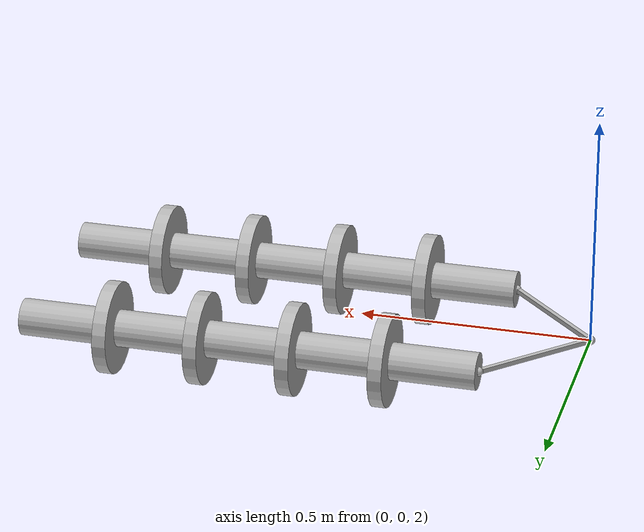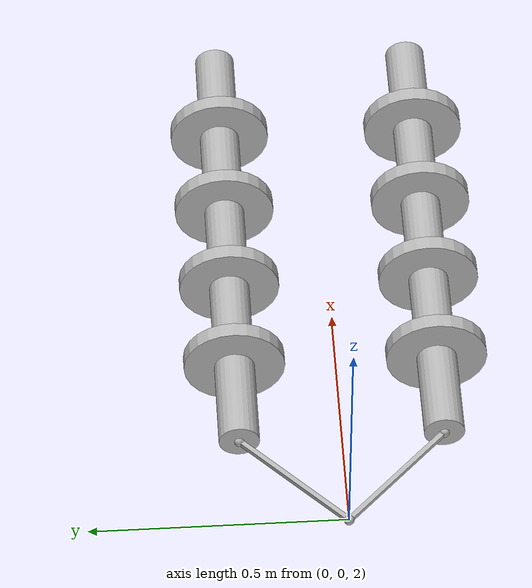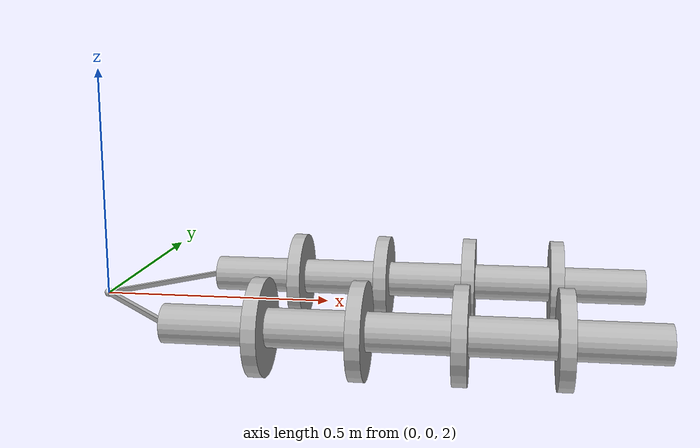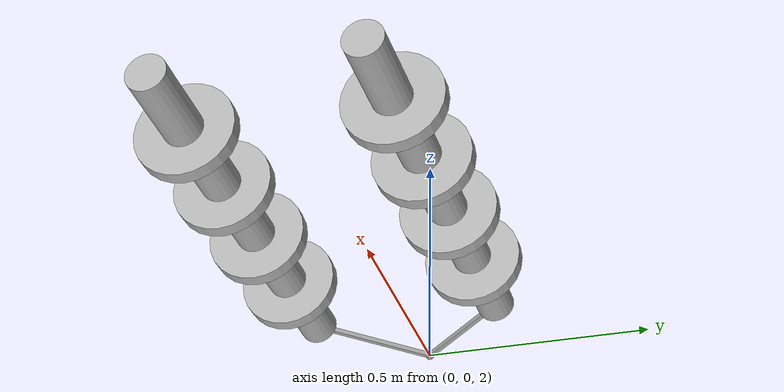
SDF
<?xml version='1.0'?>

<sdf version="1.4">
	<model name="apoyo">
		<static>false</static>
		<self_collide>false</self_collide>
		<pose>0 0 2 0 0 0</pose>
		<link name="bola_central">
			<visual name="visual">
				<geometry>
        			<sphere>
          				<radius>0.01</radius>
        			</sphere>
      			</geometry>
			</visual>

			<collision name="collision">
				<geometry>
        			<sphere>
          				<radius>0.01</radius>
        			</sphere>
      			</geometry>
			</collision>
		</link>

		<link name="palo_0">
			<pose>0.10 0.10 0 0 0 0.7853981633974483</pose>
			<visual name="visual">
				<geometry>
					<box>
						<size>0.2828 0.01 0.01</size>
					</box>
				</geometry>
			</visual>

 			<collision name="collision">
				<geometry>
					<box>
						<size>0.2828 0.01 0.01</size>
					</box>
				</geometry>
			</collision>
		</link>

		<joint name="bola_central_palo_0" type="fixed">
			<parent>bola_central</parent>
			<child>palo_0</child>
		</joint>

		<link name="bola_borde_0">
			<pose>0.2  0.2 0 0 0 0</pose>
			<visual name="visual">
				<geometry>
        			<sphere>
          				<radius>0.01</radius>
        			</sphere>
      			</geometry>
			</visual>

			<collision name="collision">
				<geometry>
        			<sphere>
          				<radius>0.01</radius>
        			</sphere>
      			</geometry>
			</collision>
		</link>

		<joint name="bola_borde_0_palo_0" type="fixed">
			<parent>bola_borde_0</parent>
			<child>palo_0</child>
		</joint> -->

		<include>
			<uri>model://Aislador</uri>
			<name>Aislador_0</name>
			<pose>0.2  0.2 0 0 -1.5707963267948966 0</pose>
		</include>

		<joint name="joint_aislador_0" type="fixed">
			<child>Aislador_0::aislador</child>
			<parent>bola_borde_0</parent>
		</joint>

		<link name="palo_1">
			<pose>0.10 -0.10 0 0 0 -0.7853981633974483</pose>
			<visual name="visual">
				<geometry>
					<box>
						<size>0.2828 0.01 0.01</size>
					</box>
				</geometry>
			</visual>

 			<collision name="collision">
				<geometry>
					<box>
						<size>0.2828 0.01 0.01</size>
					</box>
				</geometry>
			</collision>
		</link>

		<joint name="bola_central_palo_1" type="fixed">
			<parent>bola_central</parent>
			<child>palo_1</child>
		</joint>

		<link name="bola_borde_1">
			<pose>0.2 -0.2 0 0 0 0</pose>
			<visual name="visual">
				<geometry>
        			<sphere>
          				<radius>0.01</radius>
        			</sphere>
      			</geometry>
			</visual>

			<collision name="collision">
				<geometry>
        			<sphere>
          				<radius>0.01</radius>
        			</sphere>
      			</geometry>
			</collision>
		</link>

		<joint name="bola_borde_1_palo_1" type="fixed">
			<parent>bola_borde_1</parent>
			<child>palo_1</child>
		</joint> -->

		<include>
			<uri>model://Aislador</uri>
			<name>Aislador_1</name>
			<pose>0.2 -0.2 0 0 -1.5707963267948966 0</pose>
		</include>

		<joint name="joint_aislador_1" type="fixed">
			<child>Aislador_1::aislador</child>
			<parent>bola_borde_1</parent>
		</joint>

	</model>
</sdf>

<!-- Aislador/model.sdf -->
<sdf version='1.6'>
	<model name='Aislador'>
		<self_collide>false</self_collide>
		<link name='aislador'>
			<visual name = "visual_palo">
				<pose>0 0 -0.5 0 0 0</pose>
				<geometry>
					<cylinder>
						<radius>0.04</radius>
						<length>1</length>
					</cylinder>
				</geometry>
			</visual>
			<collision name = "collision_palo">
				<pose>0 0 -0.5 0 0 0</pose>
				<geometry>
					<cylinder>
						<radius>0.04</radius>
						<length>1</length>
					</cylinder>
				</geometry>
			</collision>

			<visual name='visual_cilindro_1'>
				<pose>0 0 -0.2 0 0 0</pose>
		        <geometry>
			        <cylinder>
			            <radius>0.1</radius>
			            <length>0.03</length>
			        </cylinder>
		        </geometry>
      		</visual>
      		<collision name='visual_cilindro_1'>
      			<pose>0 0 -0.2 0 0 0</pose>
        		<geometry>
          			<cylinder>
			            <radius>0.1</radius>
			            <length>0.03</length>
          			</cylinder>
        		</geometry>
      		</collision>

			<visual name='visual_cilindro_2'>
				<pose>0 0 -0.4 0 0 0</pose>
		        <geometry>
			        <cylinder>
			            <radius>0.1</radius>
			            <length>0.03</length>
			        </cylinder>
		        </geometry>
      		</visual>
      		<collision name='visual_cilindro_2'>
      			<pose>0 0 -0.4 0 0 0</pose>
        		<geometry>
          			<cylinder>
			            <radius>0.1</radius>
			            <length>0.03</length>
          			</cylinder>
        		</geometry>
      		</collision>

			<visual name='visual_cilindro_3'>
				<pose>0 0 -0.6000000000000001 0 0 0</pose>
		        <geometry>
			        <cylinder>
			            <radius>0.1</radius>
			            <length>0.03</length>
			        </cylinder>
		        </geometry>
      		</visual>
      		<collision name='visual_cilindro_3'>
      			<pose>0 0 -0.6000000000000001 0 0 0</pose>
        		<geometry>
          			<cylinder>
			            <radius>0.1</radius>
			            <length>0.03</length>
          			</cylinder>
        		</geometry>
      		</collision>

			<visual name='visual_cilindro_4'>
				<pose>0 0 -0.8 0 0 0</pose>
		        <geometry>
			        <cylinder>
			            <radius>0.1</radius>
			            <length>0.03</length>
			        </cylinder>
		        </geometry>
      		</visual>
      		<collision name='visual_cilindro_4'>
      			<pose>0 0 -0.8 0 0 0</pose>
        		<geometry>
          			<cylinder>
			            <radius>0.1</radius>
			            <length>0.03</length>
          			</cylinder>
        		</geometry>
      		</collision>

			<inertial>
				<pose>0 0 -0.5 0 0 0</pose>
				<mass>1</mass>
				<inertia>
			        <ixx>1</ixx>
			        <iyy>1</iyy>
			        <izz>1</izz>
			    </inertia>
			</inertial>
		</link>
  	</model>
</sdf>
